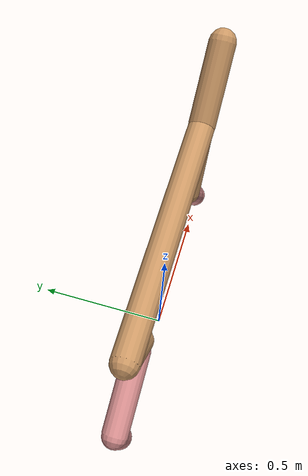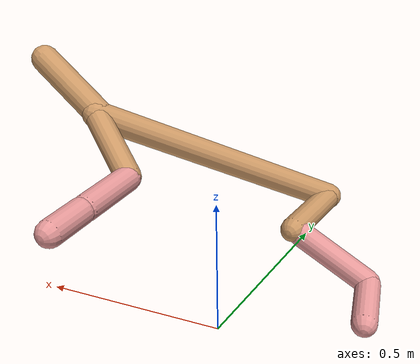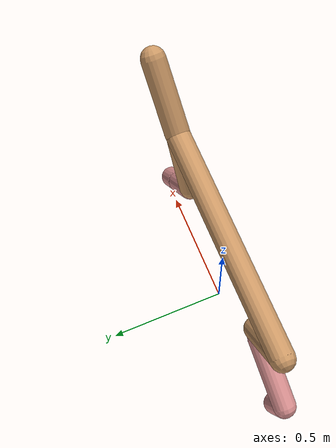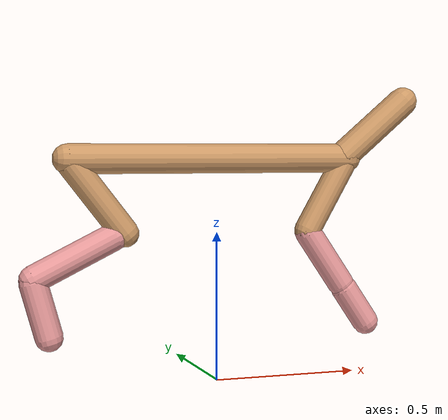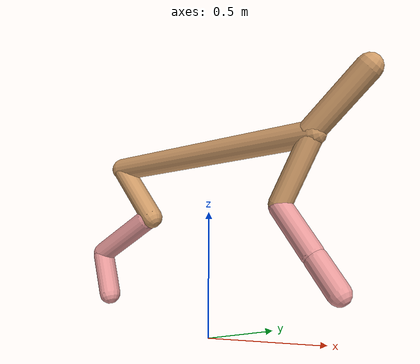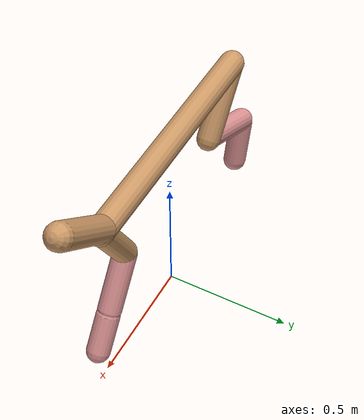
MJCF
<mujoco model="cheetah">
  <compiler angle="radian" coordinate="local" inertiafromgeom="true" settotalmass="14" />
  <default>
    <joint armature=".1" damping=".01" limited="true" solimplimit="0 .8 .03" solreflimit=".02 1" stiffness="8" />
    <geom conaffinity="0" condim="3" contype="1" friction="0.8 .1 .1" rgba="0.8 0.6 .4 1" solimp="0.0 0.8 0.01" solref="0.02 1" />
    <motor ctrllimited="true" ctrlrange="-1 1" />
  </default>
  <size nstack="300000" nuser_geom="1" />
  <option gravity="0 0 -9.81" timestep="0.01" />
  <worldbody>
    <body name="torso" pos="0.0 0.0 0.7461922980145349">
      <joint armature="0" axis="1 0 0" damping="0" limited="false" name="ignorex" pos="0 0 0" stiffness="0" type="slide" />
      <joint armature="0" axis="0 0 1" damping="0" limited="false" name="ignorez" pos="0 0 0" stiffness="0" type="slide" />
      <joint armature="0" axis="0 1 0" damping="0" limited="false" name="ignorey" pos="0 0 0" stiffness="0" type="hinge" />
      <geom fromto="-0.5 0.0 0.0 0.47082118239027093 0.0 0.0" name="torso" size="0.049193101992596654" type="capsule" />
      <geom axisangle="0 1 0 .87" name="head" pos="0.5708211823902709 0.0 0.1" size="0.05023403357052387 0.15" type="capsule" />

      <body name="bthigh" pos="-.5 0 0">
        <joint axis="0 1 0" damping="6" name="bthigh" pos="0 0 0" range="-.52 1.05" stiffness="240" type="hinge" />
        <geom axisangle="0 1 0 -3.8" name="bthigh" pos="0.09914816619972891 0.0 -0.12889261605964758" size="0.04640333210098337 0.1436028886892467" type="capsule" />
        <body name="bshin" pos="0.1582963323994578 0.0 -0.24778523211929515">
          <joint axis="0 1 0" damping="4.5" name="bshin" pos="0 0 0" range="-.785 .785" stiffness="180" type="hinge" />
          <geom axisangle="0 1 0 -2.03" name="bshin" pos="-0.13870729550497457 0.0 -0.06935364775248729" rgba="0.9 0.6 0.6 1" size="0.04640333210098337 0.14855471243715176" type="capsule" />
          <body name="bfoot" pos="-0.27741459100994914 0.0 -0.13870729550497457">
            <joint axis="0 1 0" damping="3" name="bfoot" pos="0 0 0" range="-.4 .785" stiffness="120" type="hinge" />
            <geom axisangle="0 1 0 -.27" name="bfoot" pos="0.02973238907147118 0.0 -0.0961347246644235" rgba="0.9 0.6 0.6 1" size="0.04640333210098337 0.09309428646061511" type="capsule" />
            <inertial mass="10" />
          </body>
        </body>
      </body>
      <body name="fthigh" pos="0.47082118239027093 0.0 0.0">
        <joint axis="0 1 0" damping="4.5" name="fthigh" pos="0 0 0" range="-1.5 0.8" stiffness="180" type="hinge" />
        <geom axisangle="0 1 0 .52" name="fthigh" pos="-0.07323804367788957 0.0 -0.12555093201923925" size="0.045107308213813306 0.13942633434721038" type="capsule" />
        <body name="fshin" pos="-0.14647608735577913 0.0 -0.2511018640384785">
          <joint axis="0 1 0" damping="3" name="fshin" pos="0 0 0" range="-1.2 1.1" stiffness="120" type="hinge" />
          <geom axisangle="0 1 0 -.6" name="fshin" pos="0.06799873048083119 0.0 -0.09415208835807394" rgba="0.9 0.6 0.6 1" size="0.045107308213813306 0.11112174015642332" type="capsule" />
          <body name="ffoot" pos="0.13599746096166238 0.0 -0.18830417671614788">
            <joint axis="0 1 0" damping="1.5" name="ffoot" pos="0 0 0" range="-3.1 -0.3" stiffness="60" type="hinge" />
            <geom axisangle="0 1 0 -.6" name="ffoot" pos="0.04682899425398563 0.0 -0.07284510217286655" rgba="0.9 0.6 0.6 1" size="0.045107308213813306 0.0733822812353739" type="capsule" />
            <inertial mass="10" />
          </body>
        </body>
      </body>
    </body>
  </worldbody>
  <actuator>
    <motor gear="120" joint="bthigh" name="bthigh" />
    <motor gear="90" joint="bshin" name="bshin" />
    <motor gear="60" joint="bfoot" name="bfoot" />
    <motor gear="120" joint="fthigh" name="fthigh" />
    <motor gear="60" joint="fshin" name="fshin" />
    <motor gear="30" joint="ffoot" name="ffoot" />
  </actuator>
</mujoco>
